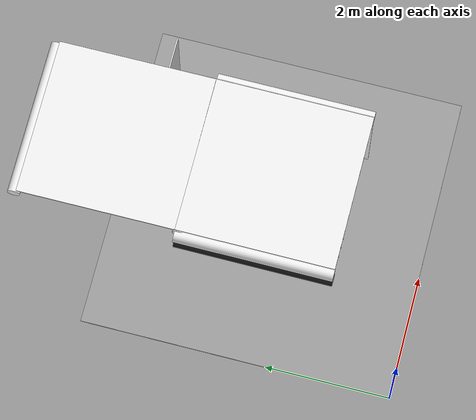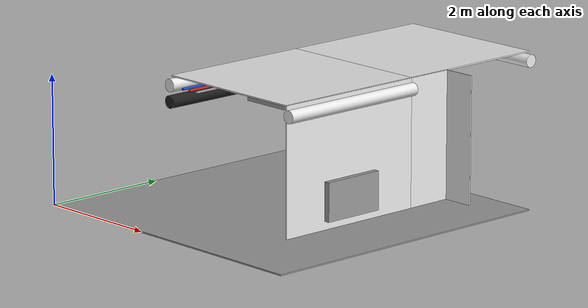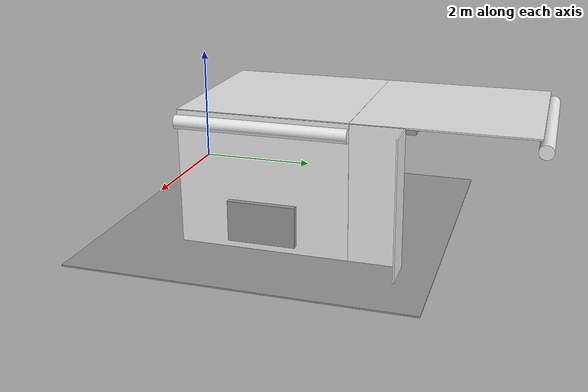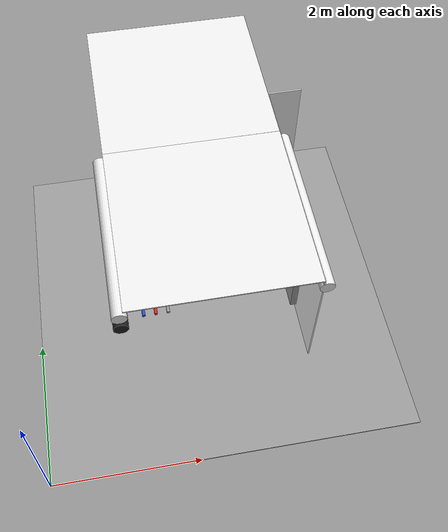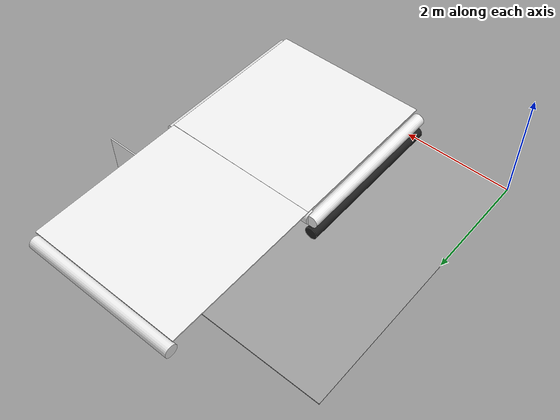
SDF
<sdf version="1.6">
 <world name="default">
  <model name="wall_top_1_2_0_2">
   <static>1</static>
   <pose>2.5 5.0 2.0 1.57 0.0 -1.57</pose>
   <link name="link">
    <collision name="collision"><geometry><box><size>2.5 0.02 2.5</size></box></geometry></collision>
    <visual name="visual">
     <material>
      <script><name>Gazebo/White</name><uri>file://media/materials/scripts/gazebo.material</uri></script>
     </material>
     <geometry><box><size>2.5 0.02 2.5</size></box></geometry>
    </visual>
   </link>
  </model>
  <model name="ceiling_1_1_2_1_2">
   <pose>2.5 4.0 1.7 0.0 0.0 0.0</pose>
   <link name="link_1">
    <visual name="visual">
     <geometry><box><size>0.8 1 0.1</size></box></geometry>
     <material>
      <script><uri>file://media/materials/scripts/gazebo.material</uri><name>Gazebo/Grey</name></script>
     </material>
    </visual>
    <collision name="collision"><geometry><box><size>0.8 1 0.1</size></box></geometry></collision>
   </link>
   <static>1</static>
  </model>
  <model name="white_pipe_left_1_2_0_2">
   <static>1</static>
   <pose>2.5 5.0 1.84 0.0 0.0 -1.57</pose>
   <link name="link_0">
    <visual name="visual">
     <pose>-1.3 0 0 1.57 0 0</pose>
     <geometry><cylinder><radius>0.1</radius><length>2.5</length></cylinder></geometry>
     <material>
      <script><uri>file://media/materials/scripts/gazebo.material</uri><name>Gazebo/White</name></script>
     </material>
    </visual>
    <collision name="collision">
     <pose>-1.3 0 0 1.57 0 0</pose>
     <geometry><cylinder><radius>0.1</radius><length>2.5</length></cylinder></geometry>
    </collision>
   </link>
  </model>
  <model name="white_pipe_right_1_2_0_2">
   <static>1</static>
   <pose>2.5 5.0 1.84 0.0 0.0 -1.57</pose>
   <link name="link_0">
    <visual name="visual">
     <pose>1.3 0 0 1.57 0 0</pose>
     <geometry><cylinder><radius>0.1</radius><length>2.5</length></cylinder></geometry>
     <material>
      <script><uri>file://media/materials/scripts/gazebo.material</uri><name>Gazebo/White</name></script>
     </material>
    </visual>
    <collision name="collision">
     <pose>1.3 0 0 1.57 0 0</pose>
     <geometry><cylinder><radius>0.1</radius><length>2.5</length></cylinder></geometry>
    </collision>
   </link>
  </model>
  <model name="wall_front_front_left_1_2_0_2">
   <static>1</static>
   <pose>3.75 4.125 1.0 0.0 0.0 -1.57</pose>
   <link name="link">
    <collision name="collision"><geometry><box><size>0.75 0.02 2.0</size></box></geometry></collision>
    <visual name="visual">
     <material>
      <script><name>Gazebo/White</name><uri>file://media/materials/scripts/gazebo.material</uri></script>
     </material>
     <geometry><box><size>0.75 0.02 2.0</size></box></geometry>
    </visual>
   </link>
  </model>
  <model name="wall_front_inside_right_1_2_0_2">
   <static>1</static>
   <pose>4.0 4.5 1.0 0.0 0.0 0.0</pose>
   <link name="link">
    <collision name="collision"><geometry><box><size>0.5 0.02 2</size></box></geometry></collision>
    <visual name="visual">
     <material>
      <script><name>Gazebo/White</name><uri>file://media/materials/scripts/gazebo.material</uri></script>
     </material>
     <geometry><box><size>0.5 0.02 2</size></box></geometry>
    </visual>
   </link>
  </model>
  <model name="wall_left_1_1_0_1">
   <static>1</static>
   <pose>3.75 2.5 1.0 0.0 0.0 4.71</pose>
   <link name="link">
    <collision name="collision"><geometry><box><size>2.5 0.02 2.0</size></box></geometry></collision>
    <visual name="visual">
     <material>
      <script><name>Gazebo/White</name><uri>file://media/materials/scripts/gazebo.material</uri></script>
     </material>
     <geometry><box><size>2.5 0.02 2.0</size></box></geometry>
    </visual>
   </link>
  </model>
  <model name="wall_top_1_1_0_1">
   <static>1</static>
   <pose>2.5 2.5 2.0 1.57 0.0 3.14</pose>
   <link name="link">
    <collision name="collision"><geometry><box><size>2.5 0.02 2.5</size></box></geometry></collision>
    <visual name="visual">
     <material>
      <script><name>Gazebo/White</name><uri>file://media/materials/scripts/gazebo.material</uri></script>
     </material>
     <geometry><box><size>2.5 0.02 2.5</size></box></geometry>
    </visual>
   </link>
  </model>
  <model name="ceiling_1_1_1_0_1">
   <pose>2.5 2.5 1.7 0.0 0.0 3.14</pose>
   <link name="link_1">
    <visual name="visual">
     <geometry><box><size>0.8 1 0.1</size></box></geometry>
     <material>
      <script><uri>file://media/materials/scripts/gazebo.material</uri><name>Gazebo/Grey</name></script>
     </material>
    </visual>
    <collision name="collision"><geometry><box><size>0.8 1 0.1</size></box></geometry></collision>
   </link>
   <static>1</static>
  </model>
  <model name="ceiling_1_1_1_1_1">
   <pose>2.5 3.5 1.7 0.0 0.0 3.14</pose>
   <link name="link_1">
    <visual name="visual">
     <geometry><box><size>0.8 1 0.1</size></box></geometry>
     <material>
      <script><uri>file://media/materials/scripts/gazebo.material</uri><name>Gazebo/Grey</name></script>
     </material>
    </visual>
    <collision name="collision"><geometry><box><size>0.8 1 0.1</size></box></geometry></collision>
   </link>
   <static>1</static>
  </model>
  <model name="white_pipe_left_1_1_0_1">
   <static>1</static>
   <pose>2.5 2.5 1.84 0.0 0.0 3.14</pose>
   <link name="link_0">
    <visual name="visual">
     <pose>-1.3 0 0 1.57 0 0</pose>
     <geometry><cylinder><radius>0.1</radius><length>2.5</length></cylinder></geometry>
     <material>
      <script><uri>file://media/materials/scripts/gazebo.material</uri><name>Gazebo/White</name></script>
     </material>
    </visual>
    <collision name="collision">
     <pose>-1.3 0 0 1.57 0 0</pose>
     <geometry><cylinder><radius>0.1</radius><length>2.5</length></cylinder></geometry>
    </collision>
   </link>
  </model>
  <model name="white_pipe_right_1_1_0_1">
   <static>1</static>
   <pose>2.5 2.5 1.84 0.0 0.0 3.14</pose>
   <link name="link_0">
    <visual name="visual">
     <pose>1.3 0 0 1.57 0 0</pose>
     <geometry><cylinder><radius>0.1</radius><length>2.5</length></cylinder></geometry>
     <material>
      <script><uri>file://media/materials/scripts/gazebo.material</uri><name>Gazebo/White</name></script>
     </material>
    </visual>
    <collision name="collision">
     <pose>1.3 0 0 1.57 0 0</pose>
     <geometry><cylinder><radius>0.1</radius><length>2.5</length></cylinder></geometry>
    </collision>
   </link>
  </model>
  <model name="black_pipe_right_1_1_0_1">
   <static>1</static>
   <pose>2.5 2.5 1.84 0.0 0.0 3.14</pose>
   <link name="link_0">
    <visual name="visual">
     <pose>1.3 0 -0.25 1.57 0 0</pose>
     <geometry><cylinder><radius>0.1</radius><length>2.5</length></cylinder></geometry>
     <material>
      <script><uri>file://media/materials/scripts/gazebo.material</uri><name>Gazebo/Black</name></script>
     </material>
    </visual>
    <collision name="collision">
     <pose>1.3 0 -0.25 1.57 0 0</pose>
     <geometry><cylinder><radius>0.1</radius><length>2.5</length></cylinder></geometry>
    </collision>
   </link>
  </model>
  <model name="grey_pipe_right_1_1_0_1">
   <static>1</static>
   <pose>2.5 2.5 1.84 0.0 0.0 3.14</pose>
   <link name="link_0">
    <visual name="visual">
     <pose>0.7 0 0 1.57 0 0</pose>
     <geometry><cylinder><radius>0.02</radius><length>2.5</length></cylinder></geometry>
     <material>
      <script><uri>file://media/materials/scripts/gazebo.material</uri><name>Gazebo/Grey</name></script>
     </material>
    </visual>
    <collision name="collision">
     <pose>0.7 0 0 1.57 0 0</pose>
     <geometry><cylinder><radius>0.02</radius><length>2.5</length></cylinder></geometry>
    </collision>
   </link>
  </model>
  <model name="red_pipe_right_1_1_0_1">
   <static>1</static>
   <pose>2.5 2.5 1.84 0.0 0.0 3.14</pose>
   <link name="link_0">
    <visual name="visual">
     <pose>0.85 0 0 1.57 0 0</pose>
     <geometry><cylinder><radius>0.02</radius><length>2.5</length></cylinder></geometry>
     <material>
      <script><uri>file://media/materials/scripts/gazebo.material</uri><name>Gazebo/Red</name></script>
     </material>
    </visual>
    <collision name="collision">
     <pose>0.85 0 0 1.57 0 0</pose>
     <geometry><cylinder><radius>0.02</radius><length>2.5</length></cylinder></geometry>
    </collision>
   </link>
  </model>
  <model name="blue_pipe_right_1_1_0_1">
   <static>1</static>
   <pose>2.5 2.5 1.84 0.0 0.0 3.14</pose>
   <link name="link_0">
    <visual name="visual">
     <pose>1 0 0 1.57 0 0</pose>
     <geometry><cylinder><radius>0.02</radius><length>2.5</length></cylinder></geometry>
     <material>
      <script><uri>file://media/materials/scripts/gazebo.material</uri><name>Gazebo/Blue</name></script>
     </material>
    </visual>
    <collision name="collision">
     <pose>1 0 0 1.57 0 0</pose>
     <geometry><cylinder><radius>0.02</radius><length>2.5</length></cylinder></geometry>
    </collision>
   </link>
  </model>
  <model name="wall_bottom_1_1_0_1">
   <static>1</static>
   <pose>2.5 2.5 0.0 0.0 0.0 3.14</pose>
   <link name="link">
    <collision name="collision"><geometry><box><size>5.0 5.0 0.02</size></box></geometry></collision>
    <visual name="visual">
     <material>
      <script><name>Gazebo/Grey</name><uri>file://media/materials/scripts/gazebo.material</uri></script>
     </material>
     <geometry><box><size>5.0 5.0 0.02</size></box></geometry>
    </visual>
   </link>
  </model>
  <model name="panel_1_1_0_1">
   <static>1</static>
   <pose>3.75 2.5 0.44 0.0 0.0 3.14</pose>
   <link name="link">
    <collision name="collision"><geometry><box><size>0.2 1 0.6</size></box></geometry></collision>
    <visual name="visual">
     <material>
      <script><name>Gazebo/Grey</name><uri>file://media/materials/scripts/gazebo.material</uri></script>
     </material>
     <geometry><box><size>0.2 1 0.6</size></box></geometry>
    </visual>
   </link>
  </model>
 </world>
</sdf>
